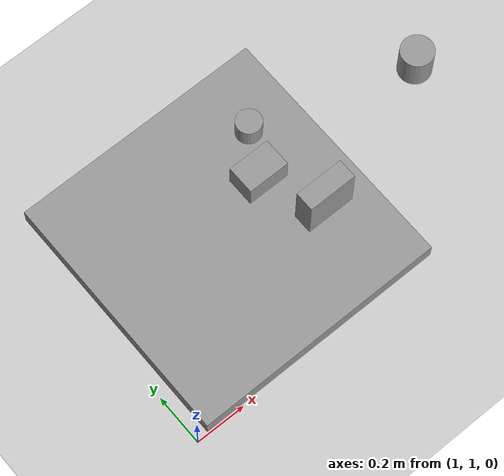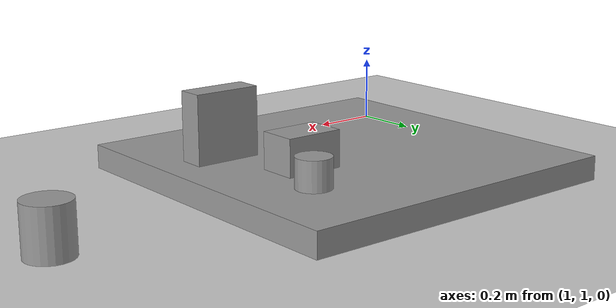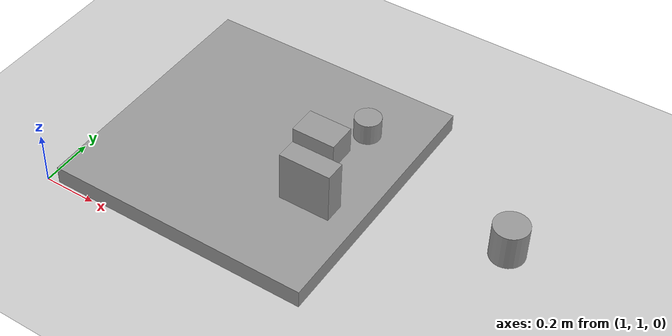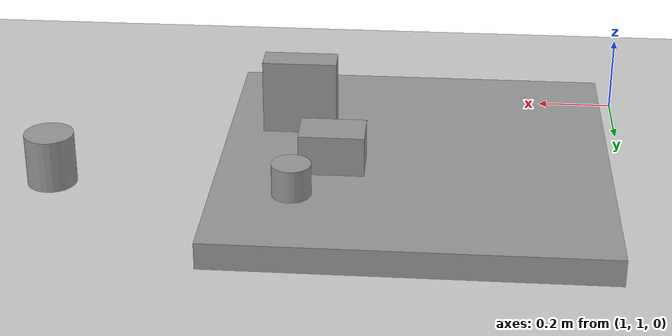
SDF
<sdf version="1.6">
 <world name="default">
  <light name="sun" type="directional">
   <pose>0 0 10 0 -0 0</pose>
   <diffuse>0.8 0.8 0.8 1</diffuse>
   <specular>0.1 0.1 0.1 1</specular>
   <attenuation>
    <range>1000</range>
    <constant>0.9</constant>
    <linear>0.01</linear>
    <quadratic>0.001</quadratic>
   </attenuation>
   <direction>-0.5 0.5 -1</direction>
  </light>
  <model name="ground_plane">
   <static>1</static>
   <link name="link">
    <collision name="collision">
     <geometry><plane><normal>0 0 1</normal><size>100 100</size></plane></geometry>
     <surface><friction><ode><mu>100</mu><mu2>50</mu2></ode></friction></surface>
    </collision>
    <visual name="visual">
     <cast_shadows>0</cast_shadows>
     <geometry><plane><normal>0 0 1</normal><size>100 100</size></plane></geometry>
     <material>
      <script><uri>file://media/materials/scripts/gazebo.material</uri><name>Gazebo/Grey</name></script>
     </material>
    </visual>
   </link>
  </model>
  <gravity>0 0 -9.8</gravity>
  <magnetic_field>6e-06 2.3e-05 -4.2e-05</magnetic_field>
  <atmosphere type="adiabatic"/>
  <physics name="default_physics" default="0" type="ode">
   <max_step_size>0.001</max_step_size>
   <real_time_factor>1</real_time_factor>
   <real_time_update_rate>1000</real_time_update_rate>
  </physics>
  <scene><ambient>0.4 0.4 0.4 1</ambient><background>0.7 0.7 0.7 1</background><shadows>1</shadows></scene>
  <spherical_coordinates>
   <surface_model>EARTH_WGS84</surface_model>
   <latitude_deg>0</latitude_deg>
   <longitude_deg>0</longitude_deg>
   <elevation>0</elevation>
   <heading_deg>0</heading_deg>
  </spherical_coordinates>
  <model name="unit_box_0">
   <pose>1.54652 1.50697 0.039823 0 -0 0</pose>
   <link name="link">
    <inertial>
     <mass>1</mass>
     <inertia>
      <ixx>0.166667</ixx>
      <ixy>0</ixy>
      <ixz>0</ixz>
      <iyy>0.166667</iyy>
      <iyz>0</iyz>
      <izz>0.166667</izz>
     </inertia>
    </inertial>
    <collision name="collision"><geometry><box><size>1 1 0.069438</size></box></geometry></collision>
    <visual name="visual">
     <geometry><box><size>1 1 0.069438</size></box></geometry>
     <material>
      <script><name>Gazebo/Grey</name><uri>file://media/materials/scripts/gazebo.material</uri></script>
     </material>
    </visual>
   </link>
  </model>
  <model name="unit_box_1">
   <pose>1.85691 1.35752 0.172428 0 -0 0</pose>
   <link name="link">
    <inertial>
     <mass>1</mass>
     <inertia>
      <ixx>0.166667</ixx>
      <ixy>0</ixy>
      <ixz>0</ixz>
      <iyy>0.166667</iyy>
      <iyz>0</iyz>
      <izz>0.166667</izz>
     </inertia>
    </inertial>
    <collision name="collision">
     <geometry><box><size>0.194033 0.0770379 0.19811</size></box></geometry>
    </collision>
    <visual name="visual">
     <geometry><box><size>0.194033 0.0770379 0.19811</size></box></geometry>
     <material>
      <script><name>Gazebo/Grey</name><uri>file://media/materials/scripts/gazebo.material</uri></script>
     </material>
    </visual>
   </link>
  </model>
  <model name="unit_box_2">
   <pose>1.75411 1.58641 0.128165 0 -0 0</pose>
   <link name="link">
    <inertial>
     <mass>1</mass>
     <inertia>
      <ixx>0.166667</ixx>
      <ixy>0</ixy>
      <ixz>0</ixz>
      <iyy>0.166667</iyy>
      <iyz>0</iyz>
      <izz>0.166667</izz>
     </inertia>
    </inertial>
    <collision name="collision"><geometry><box><size>0.167065 0.1121 0.104652</size></box></geometry></collision>
    <visual name="visual">
     <geometry><box><size>0.167065 0.1121 0.104652</size></box></geometry>
     <material>
      <script><name>Gazebo/Grey</name><uri>file://media/materials/scripts/gazebo.material</uri></script>
     </material>
    </visual>
   </link>
  </model>
  <model name="unit_cylinder_0">
   <pose>1.84338 1.74696 0.117087 0 -0 0</pose>
   <link name="link">
    <inertial>
     <mass>1</mass>
     <inertia><ixx>0.145833</ixx><ixy>0</ixy><ixz>0</ixz><iyy>0.145833</iyy><iyz>0</iyz><izz>0.125</izz></inertia>
    </inertial>
    <collision name="collision">
     <geometry><cylinder><radius>0.0497745</radius><length>0.083927</length></cylinder></geometry>
    </collision>
    <visual name="visual">
     <geometry><cylinder><radius>0.0497745</radius><length>0.083927</length></cylinder></geometry>
     <material>
      <script><name>Gazebo/Grey</name><uri>file://media/materials/scripts/gazebo.material</uri></script>
     </material>
    </visual>
   </link>
  </model>
  <model name="unit_cylinder_1">
   <pose>2.48751 1.58442 0.068551 0 -0 0</pose>
   <link name="link">
    <inertial>
     <mass>1</mass>
     <inertia><ixx>0.145833</ixx><ixy>0</ixy><ixz>0</ixz><iyy>0.145833</iyy><iyz>0</iyz><izz>0.125</izz></inertia>
    </inertial>
    <collision name="collision">
     <geometry><cylinder><radius>0.0643375</radius><length>0.139125</length></cylinder></geometry>
    </collision>
    <visual name="visual">
     <geometry><cylinder><radius>0.0643375</radius><length>0.139125</length></cylinder></geometry>
     <material>
      <script><name>Gazebo/Grey</name><uri>file://media/materials/scripts/gazebo.material</uri></script>
     </material>
    </visual>
   </link>
  </model>
 </world>
</sdf>
